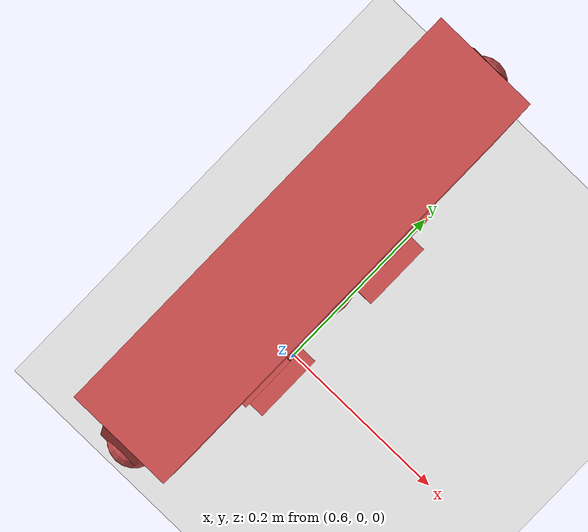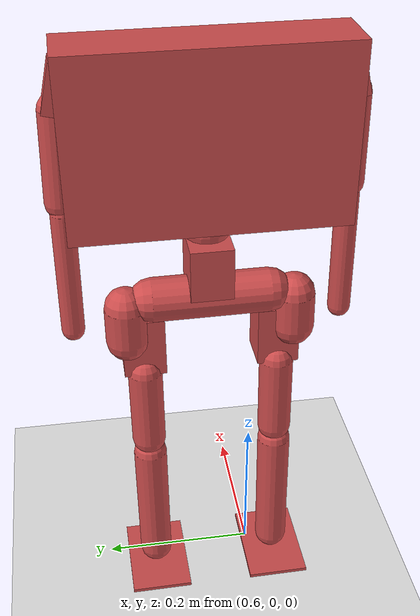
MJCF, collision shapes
<mujoco model="HumanoidReal">
  <compiler angle="radian" meshdir="humanoid_meshes_obj" autolimits="true" />
  <default>
    <joint damping="1.0" armature="0.05" />
    <default class="visual">
      <geom group="2" type="mesh" contype="0" conaffinity="0" density="0" />
    </default>
    <default class="collision">
      <geom group="3" condim="3" friction="0.8 0.1 0.01" solref="0.01 1" solimp="0.95 0.99 0.001" rgba="0.8 0.3 0.3 0.4" />
    </default>
  </default>
  <asset>
    <mesh name="0003_1" file="0003_1.obj" scale="0.001 0.001 0.001" />
    <mesh name="0003_10" file="0003_10.obj" scale="0.001 0.001 0.001" />
    <mesh name="0003_11" file="0003_11.obj" scale="0.001 0.001 0.001" />
    <mesh name="0003_2" file="0003_2.obj" scale="0.001 0.001 0.001" />
    <mesh name="0003_3" file="0003_3.obj" scale="0.001 0.001 0.001" />
    <mesh name="0003_4" file="0003_4.obj" scale="0.001 0.001 0.001" />
    <mesh name="0003_5" file="0003_5.obj" scale="0.001 0.001 0.001" />
    <mesh name="0003_6" file="0003_6.obj" scale="0.001 0.001 0.001" />
    <mesh name="0003_7" file="0003_7.obj" scale="0.001 0.001 0.001" />
    <mesh name="0003_8" file="0003_8.obj" scale="0.001 0.001 0.001" />
    <mesh name="0003_9" file="0003_9.obj" scale="0.001 0.001 0.001" />
    <mesh name="0004_1" file="0004_1.obj" scale="0.001 0.001 0.001" />
    <mesh name="0004_10" file="0004_10.obj" scale="0.001 0.001 0.001" />
    <mesh name="0004_11" file="0004_11.obj" scale="0.001 0.001 0.001" />
    <mesh name="0004_2" file="0004_2.obj" scale="0.001 0.001 0.001" />
    <mesh name="0004_3" file="0004_3.obj" scale="0.001 0.001 0.001" />
    <mesh name="0004_4" file="0004_4.obj" scale="0.001 0.001 0.001" />
    <mesh name="0004_5" file="0004_5.obj" scale="0.001 0.001 0.001" />
    <mesh name="0004_6" file="0004_6.obj" scale="0.001 0.001 0.001" />
    <mesh name="0004_7" file="0004_7.obj" scale="0.001 0.001 0.001" />
    <mesh name="0004_8" file="0004_8.obj" scale="0.001 0.001 0.001" />
    <mesh name="0004_9" file="0004_9.obj" scale="0.001 0.001 0.001" />
    <mesh name="Component22_1" file="Component22_1.obj" scale="0.001 0.001 0.001" />
    <mesh name="LeftZYprint_1" file="LeftZYprint_1.obj" scale="0.001 0.001 0.001" />
    <mesh name="SCS0009_1" file="SCS0009_1.obj" scale="0.001 0.001 0.001" />
    <mesh name="SCS0009_2" file="SCS0009_2.obj" scale="0.001 0.001 0.001" />
    <mesh name="SCS0009_3" file="SCS0009_3.obj" scale="0.001 0.001 0.001" />
    <mesh name="SCS0009_4" file="SCS0009_4.obj" scale="0.001 0.001 0.001" />
    <mesh name="SCS0009_5" file="SCS0009_5.obj" scale="0.001 0.001 0.001" />
    <mesh name="SCS0009_6" file="SCS0009_6.obj" scale="0.001 0.001 0.001" />
    <mesh name="Servo_SC15_1" file="Servo_SC15_1.obj" scale="0.001 0.001 0.001" />
    <mesh name="Servo_SC15_10" file="Servo_SC15_10.obj" scale="0.001 0.001 0.001" />
    <mesh name="Servo_SC15_11" file="Servo_SC15_11.obj" scale="0.001 0.001 0.001" />
    <mesh name="Servo_SC15_2" file="Servo_SC15_2.obj" scale="0.001 0.001 0.001" />
    <mesh name="Servo_SC15_3" file="Servo_SC15_3.obj" scale="0.001 0.001 0.001" />
    <mesh name="Servo_SC15_4" file="Servo_SC15_4.obj" scale="0.001 0.001 0.001" />
    <mesh name="Servo_SC15_5" file="Servo_SC15_5.obj" scale="0.001 0.001 0.001" />
    <mesh name="Servo_SC15_6" file="Servo_SC15_6.obj" scale="0.001 0.001 0.001" />
    <mesh name="Servo_SC15_7" file="Servo_SC15_7.obj" scale="0.001 0.001 0.001" />
    <mesh name="Servo_SC15_8" file="Servo_SC15_8.obj" scale="0.001 0.001 0.001" />
    <mesh name="Servo_SC15_9" file="Servo_SC15_9.obj" scale="0.001 0.001 0.001" />
    <mesh name="XYWaist_1" file="XYWaist_1.obj" scale="0.001 0.001 0.001" />
    <mesh name="YZWaist_1" file="YZWaist_1.obj" scale="0.001 0.001 0.001" />
    <mesh name="base_link" file="base_link.obj" scale="0.001 0.001 0.001" />
    <mesh name="elbowConnector_1" file="elbowConnector_1.obj" scale="0.001 0.001 0.001" />
    <mesh name="forearm_1" file="forearm_1.obj" scale="0.001 0.001 0.001" />
    <mesh name="forearm_2" file="forearm_2.obj" scale="0.001 0.001 0.001" />
    <mesh name="mount_1" file="mount_1.obj" scale="0.001 0.001 0.001" />
    <mesh name="mount_2" file="mount_2.obj" scale="0.001 0.001 0.001" />
    <mesh name="mount_3" file="mount_3.obj" scale="0.001 0.001 0.001" />
    <mesh name="mount_4" file="mount_4.obj" scale="0.001 0.001 0.001" />
    <mesh name="mount_5" file="mount_5.obj" scale="0.001 0.001 0.001" />
    <mesh name="mount_6" file="mount_6.obj" scale="0.001 0.001 0.001" />
    <mesh name="rightElbowConnector_1" file="rightElbowConnector_1.obj" scale="0.001 0.001 0.001" />
    <mesh name="rightShoulderConnector_1" file="rightShoulderConnector_1.obj" scale="0.001 0.001 0.001" />
    <mesh name="rightXZprint_1" file="rightXZprint_1.obj" scale="0.001 0.001 0.001" />
    <mesh name="rightXZprint_2" file="rightXZprint_2.obj" scale="0.001 0.001 0.001" />
    <mesh name="rightZYprint_1" file="rightZYprint_1.obj" scale="0.001 0.001 0.001" />
    <mesh name="rightfoot_1" file="rightfoot_1.obj" scale="0.001 0.001 0.001" />
    <mesh name="rightfoot_2" file="rightfoot_2.obj" scale="0.001 0.001 0.001" />
    <mesh name="rightshin_1" file="rightshin_1.obj" scale="0.001 0.001 0.001" />
    <mesh name="rightshin_2" file="rightshin_2.obj" scale="0.001 0.001 0.001" />
    <mesh name="shoulderConnector_1" file="shoulderConnector_1.obj" scale="0.001 0.001 0.001" />
    <mesh name="shoulderLeft_1" file="shoulderLeft_1.obj" scale="0.001 0.001 0.001" />
    <mesh name="shoulderRight_1" file="shoulderRight_1.obj" scale="0.001 0.001 0.001" />
    <mesh name="thigh_1" file="thigh_1.obj" scale="0.001 0.001 0.001" />
    <mesh name="thigh_2" file="thigh_2.obj" scale="0.001 0.001 0.001" />
    <mesh name="upperArm_1" file="upperArm_1.obj" scale="0.001 0.001 0.001" />
    <mesh name="upperArm_2" file="upperArm_2.obj" scale="0.001 0.001 0.001" />
  </asset>
  <worldbody>
    <light directional="true" diffuse=".8 .8 .8" pos="0 0 5" dir="0 0 -1" />
    <geom name="floor" type="plane" size="10 10 0.1" rgba=".9 .9 .9 1" condim="3" />
    <body name="base_link" pos="0 0 -0.0130">
      <inertial pos="0.560728 0.059613 0.470217" mass="0.154201" fullinertia="3.9931e-04 5.7774e-05 3.9962e-04 -1.4036e-06 -1.0629e-07 4.4607e-06" />
      <joint name="base_joint" type="free" />
      <body name="0003_9" pos="0.540429 -0.527466 0.983811">
        <inertial pos="0.019955 0.489201 -0.541609" mass="0.117744" fullinertia="8.7079e-05 8.7791e-05 3.7257e-05 3.6923e-08 1.2223e-07 -1.0681e-05" />
        <joint name="Revolute 18" pos="0.0457 0.4911815 -0.50814" axis="1 0 0" range="-1.5708 0.349066" actuatorfrcrange="-100 100" />
        <body name="0003_11" pos="-0.437997 1.05685 -0.548399">
          <inertial pos="0.473030 -0.550624 -0.031976" mass="0.217164" fullinertia="1.3138e-04 1.3935e-04 8.3822e-05 7.0443e-08 5.5091e-06 -7.2835e-06" />
          <joint name="Revolute 26" pos="0.46038 -0.55657 -0.04412" axis="0 -0.013033 -0.999915" range="-1.5708 0.959931" actuatorfrcrange="-100 100" />
          <body name="0003_4" pos="-0.091932 -0.549871 0.341287">
            <inertial pos="0.550018 -0.004388 -0.462059" mass="0.119071" fullinertia="2.1368e-04 1.9314e-04 3.5538e-05 2.3302e-09 1.3527e-07 -2.5582e-06" />
            <joint name="Revolute 23" pos="0.55055 -0.02929 -0.40110" axis="0 -0.999915 0.013033" range="-1.5708 0.349066" actuatorfrcrange="-100 100" />
            <body name="0003_2" pos="0.80407 -0.037649 -1.06229">
              <inertial pos="-0.253933 0.030426 0.401634" mass="0.075373" fullinertia="2.9313e-04 2.8409e-04 5.5356e-05 1.0961e-10 8.3585e-09 -2.9824e-06" />
              <joint name="Revolute 21" pos="-0.25655 0.05797 0.53529" axis="0 0.999915 -0.013033" range="-1.5708 1.5708" actuatorfrcrange="-100 100" />
              <geom class="visual" mesh="0003_2" pos="-0.81457 0.058137 0.28559" quat="1 0 0 0" />
              <geom class="visual" mesh="rightshin_2" pos="-0.81457 0.058137 0.28559" quat="1 0 0 0" />
              <geom class="visual" mesh="rightfoot_2" pos="-0.81457 0.058137 0.28559" quat="1 0 0 0" />
              <geom class="collision" type="box" pos="-0.25393 0.02937 0.32068" quat="0.49673 -0.50325 -0.50325 -0.49673" size="0.00250 0.06000 0.04000" />
              <geom class="collision" type="capsule" pos="-0.25394 0.03084 0.43367" quat="0.00652 0.99998 0.00000 -0.00000" size="0.02140 0.08910" />
            </body>
            <geom class="visual" mesh="0003_4" pos="-0.0105 0.020488 -0.776699" quat="1 0 0 0" />
            <geom class="visual" mesh="thigh_1" pos="-0.0105 0.020488 -0.776699" quat="1 0 0 0" />
            <geom class="visual" mesh="0004_2" pos="-0.0105 0.020488 -0.776699" quat="1 0 0 0" />
            <geom class="visual" mesh="Servo_SC15_10" pos="-0.0105 0.020488 -0.776699" quat="1 0 0 0" />
            <geom class="collision" type="capsule" pos="0.55000 -0.00430 -0.46306" quat="0.00000 -0.00000 0.00652 0.99998" size="0.02140 0.05318" />
          </body>
          <geom class="visual" mesh="0003_11" pos="-0.102432 -0.529383 -0.435412" quat="1 0 0 0" />
          <geom class="visual" mesh="LeftZYprint_1" pos="-0.102432 -0.529383 -0.435412" quat="1 0 0 0" />
          <geom class="visual" mesh="0004_10" pos="-0.102432 -0.529383 -0.435412" quat="1 0 0 0" />
          <geom class="visual" mesh="Servo_SC15_11" pos="-0.102432 -0.529383 -0.435412" quat="1 0 0 0" />
          <geom class="collision" type="box" pos="0.47388 -0.55291 -0.02889" quat="0.00462 0.70709 0.70709 -0.00462" size="0.02565 0.02583 0.03832" />
        </body>
        <geom class="visual" mesh="0003_9" pos="-0.540429 0.527466 -0.983811" quat="1 0 0 0" />
        <geom class="visual" mesh="rightXZprint_2" pos="-0.540429 0.527466 -0.983811" quat="1 0 0 0" />
        <geom class="visual" mesh="0004_6" pos="-0.540429 0.527466 -0.983811" quat="1 0 0 0" />
        <geom class="visual" mesh="Servo_SC15_6" pos="-0.540429 0.527466 -0.983811" quat="1 0 0 0" />
        <geom class="collision" type="capsule" pos="0.01990 0.48517 -0.54360" quat="0.00787 0.70706 0.70706 -0.00787" size="0.02578 0.02263" />
      </body>
      <body name="0003_1" pos="0.395242 0.737653 0.965035">
        <inertial pos="0.165737 -0.580924 -0.525375" mass="0.117744" fullinertia="8.7079e-05 8.8322e-05 3.6726e-05 3.3725e-08 -1.2315e-07 9.3490e-06" />
        <joint name="Revolute 24" pos="0.13999 -0.5950085 -0.48698" axis="-1 0 0" range="-1.5708 0.174533" actuatorfrcrange="-100 100" />
        <body name="0003_3" pos="0.610997 -1.12513 -0.692973">
          <inertial pos="-0.430406 0.526371 0.129303" mass="0.217164" fullinertia="1.3148e-04 1.3946e-04 8.3801e-05 4.2058e-07 5.4986e-06 6.3895e-06" />
          <joint name="Revolute 28" pos="-0.44769 0.53181 0.11700" axis="0 -0.013033 -0.999915" range="-0.959931 1.5708" actuatorfrcrange="-100 100" />
          <body name="0003_10" pos="-0.995739 0.366978 0.502481">
            <inertial pos="0.550418 0.161015 -0.462060" mass="0.119071" fullinertia="2.1368e-04 1.9314e-04 3.5538e-05 2.3272e-09 1.3524e-07 -2.5567e-06" />
            <joint name="Revolute 25" pos="0.55095 0.13619 -0.39521" axis="0 -0.999915 0.013033" range="-1.5708 0.349066" actuatorfrcrange="-100 100" />
            <body name="0003_5" pos="0.802314 0.293125 -1.06485">
              <inertial pos="-0.251777 -0.135917 0.404203" mass="0.075373" fullinertia="2.9316e-04 2.8405e-04 5.5423e-05 8.6855e-11 8.4652e-09 -4.7248e-06" />
              <joint name="Revolute 27" pos="-0.25335 -0.10745 0.53383" axis="0 0.999915 -0.013033" range="-1.5708 1.5708" actuatorfrcrange="-100 100" />
              <geom class="visual" mesh="0003_5" pos="-0.812814 -0.272623 0.290302" quat="1 0 0 0" />
              <geom class="visual" mesh="rightshin_1" pos="-0.812814 -0.272623 0.290302" quat="1 0 0 0" />
              <geom class="visual" mesh="rightfoot_1" pos="-0.812814 -0.272623 0.290302" quat="1 0 0 0" />
              <geom class="collision" type="box" pos="-0.25177 -0.13750 0.32326" quat="0.50325 0.49673 0.49673 -0.50325" size="0.00250 0.06000 0.04000" />
              <geom class="collision" type="capsule" pos="-0.25178 -0.13453 0.43623" quat="0.00000 0.00000 -0.00652 -0.99998" size="0.02140 0.08910" />
            </body>
            <geom class="visual" mesh="0003_10" pos="-0.0105 0.020502 -0.774543" quat="1 0 0 0" />
            <geom class="visual" mesh="thigh_2" pos="-0.0105 0.020502 -0.774543" quat="1 0 0 0" />
            <geom class="visual" mesh="0004_9" pos="-0.0105 0.020502 -0.774543" quat="1 0 0 0" />
            <geom class="visual" mesh="Servo_SC15_5" pos="-0.0105 0.020502 -0.774543" quat="1 0 0 0" />
            <geom class="collision" type="capsule" pos="0.55040 0.16111 -0.46306" quat="0.00000 -0.00000 0.00652 0.99998" size="0.02140 0.05317" />
          </body>
          <geom class="visual" mesh="0003_3" pos="-1.00624 0.38748 -0.272062" quat="1 0 0 0" />
          <geom class="visual" mesh="rightZYprint_1" pos="-1.00624 0.38748 -0.272062" quat="1 0 0 0" />
          <geom class="visual" mesh="0004_8" pos="-1.00624 0.38748 -0.272062" quat="1 0 0 0" />
          <geom class="visual" mesh="Servo_SC15_4" pos="-1.00624 0.38748 -0.272062" quat="1 0 0 0" />
          <geom class="collision" type="box" pos="-0.42953 0.52885 0.13231" quat="0.00020 -0.00000 -0.99998 0.00679" size="0.02584 0.02597 0.03833" />
        </body>
        <geom class="visual" mesh="0003_1" pos="-0.395242 -0.737653 -0.965035" quat="1 0 0 0" />
        <geom class="visual" mesh="rightXZprint_1" pos="-0.395242 -0.737653 -0.965035" quat="1 0 0 0" />
        <geom class="visual" mesh="0004_7" pos="-0.395242 -0.737653 -0.965035" quat="1 0 0 0" />
        <geom class="visual" mesh="Servo_SC15_9" pos="-0.395242 -0.737653 -0.965035" quat="1 0 0 0" />
        <geom class="collision" type="capsule" pos="0.16579 -0.57694 -0.52747" quat="0.00135 0.70711 0.70711 -0.00135" size="0.02578 0.02263" />
      </body>
      <body name="0003_6" pos="0.482752 -0.417042 1.07481">
        <inertial pos="0.085091 0.477962 -0.560107" mass="0.154732" fullinertia="6.2717e-05 8.7002e-05 6.2619e-05 -3.8531e-07 -1.0349e-05 -1.3163e-06" />
        <joint name="Revolute 22" pos="0.05248 0.47970 -0.58852" axis="-1 0 0" range="-0.610865 0.610865" actuatorfrcrange="-100 100" armature="0.0437" damping="0" />
        <geom class="visual" mesh="0003_6" pos="-0.482752 0.417042 -1.07481" quat="1 0 0 0" />
        <geom class="visual" mesh="XYWaist_1" pos="-0.482752 0.417042 -1.07481" quat="1 0 0 0" />
        <geom class="visual" mesh="0004_4" pos="-0.482752 0.417042 -1.07481" quat="1 0 0 0" />
        <geom class="visual" mesh="Servo_SC15_1" pos="-0.482752 0.417042 -1.07481" quat="1 0 0 0" />
        <geom class="collision" type="box" pos="0.08313 0.47849 -0.56513" quat="0.50202 0.49797 0.50202 0.49797" size="0.02555 0.03237 0.03265" />
      <body name="waist_flex_roll" pos="0 0 0"><inertial pos="0 0 0" mass="1e-5" diaginertia="1e-9 1e-9 1e-9" /><joint name="waist_flex_roll_j" pos="0.05248 0.47970 -0.58852" axis="-1 0 0" range="-0.5 0.5" stiffness="1.551" damping="0.0566" armature="0" actuatorfrcrange="-100 100" /><body name="0003_7" pos="-0.472252 0.395027 0.010165">
          <inertial pos="0.562558 0.083961 -0.514154" mass="0.117680" fullinertia="9.0400e-05 9.2508e-05 4.2372e-05 -6.3421e-08 -1.2598e-05 -3.9081e-07" />
          <joint name="Revolute 20" pos="0.55329 0.05789 -0.55354" axis="0 -0.999979 0.006517" range="-0.349066 1.5708" actuatorfrcrange="-100 100" />
          <body name="0003_8" pos="0 0.677737 -0.408133">
            <inertial pos="0.550157 -0.592797 0.015843" mass="0.108104" fullinertia="7.4307e-04 3.1611e-04 5.1507e-04 -2.1887e-08 -3.3569e-06 1.2968e-06" />
            <joint name="Revolute 19" pos="0.55089 -0.59622 -0.05599" axis="0 0.006517 0.999979" range="-1.5708 1.5708" actuatorfrcrange="-100 100" />
            <body name="mount_6" pos="0.54596 -0.420605 0.079674">
              <inertial pos="0.005405 -0.021997 -0.031355" mass="0.021775" fullinertia="5.5073e-06 4.7652e-06 3.1989e-06 7.3431e-08 1.4249e-08 -1.9881e-07" />
              <joint name="Revolute 2" pos="0.01375 -0.01317 -0.00776" axis="0 0.999979 -0.006517" range="-2.0944 2.0944" actuatorfrcrange="-100 100" />
              <body name="mount_5" pos="-0.01447 -0.002339 -0.035059">
                <inertial pos="0.021511 -0.010858 -0.078608" mass="0.024203" fullinertia="3.2921e-05 3.4139e-05 4.1396e-06 -1.0956e-07 2.3278e-06 1.1130e-06" />
                <joint name="Revolute 6" pos="0.00924 -0.02210 -0.01009" axis="-1 0 0" range="-1.5708 0.436332" actuatorfrcrange="-100 100" />
                <body name="mount_2" pos="0.015106 -0.01 -0.12041">
                  <inertial pos="0.005204 0.000366 -0.093340" mass="0.016861" fullinertia="4.1408e-05 4.0629e-05 2.1119e-06 -5.3027e-14 6.3937e-13 6.1315e-07" />
                  <joint name="Revolute 1" pos="0.01410 -0.01319 -0.01023" axis="0 -1 0" range="0 2.0944" actuatorfrcrange="-100 100" />
                  <geom class="visual" mesh="mount_2" pos="-0.557096 -0.222778 -0.601051" quat="1 0 0 0" />
                  <geom class="visual" mesh="forearm_1" pos="-0.557096 -0.222778 -0.601051" quat="1 0 0 0" />
                  <geom class="collision" type="capsule" pos="0.00520 0.00081 -0.08873" quat="0.00000 -0.00000 1.00000 0.00000" size="0.01375 0.07625" />
                </body>
                <geom class="visual" mesh="mount_5" pos="-0.54199 -0.232778 -0.721461" quat="1 0 0 0" />
                <geom class="visual" mesh="upperArm_2" pos="-0.54199 -0.232778 -0.721461" quat="1 0 0 0" />
                <geom class="visual" mesh="rightElbowConnector_1" pos="-0.54199 -0.232778 -0.721461" quat="1 0 0 0" />
                <geom class="visual" mesh="SCS0009_2" pos="-0.54199 -0.232778 -0.721461" quat="1 0 0 0" />
                <geom class="collision" type="capsule" pos="0.02349 -0.00960 -0.06896" quat="0.00774 -0.70706 -0.70706 -0.00774" size="0.01772 0.05258" />
              </body>
              <geom class="visual" mesh="mount_6" pos="-0.55646 -0.235117 -0.75652" quat="1 0 0 0" />
              <geom class="visual" mesh="rightShoulderConnector_1" pos="-0.55646 -0.235117 -0.75652" quat="1 0 0 0" />
              <geom class="visual" mesh="SCS0009_1" pos="-0.55646 -0.235117 -0.75652" quat="1 0 0 0" />
              <geom class="collision" type="box" pos="0.00571 -0.02411 -0.02833" quat="0.99420 0.10754 0.00000 0.00000" size="0.01498 0.01902 0.02729" />
            </body>
            <body name="mount_1" pos="0.54596 -0.737898 0.081742">
              <inertial pos="0.005405 -0.004657 -0.031468" mass="0.021775" fullinertia="5.5073e-06 4.7691e-06 3.1931e-06 -7.3235e-08 1.5208e-08 1.7832e-07" />
              <joint name="Revolute 4" pos="-0.00326 -0.01321 -0.01299" axis="0 -0.999979 0.006517" range="-2.0944 2.0944" actuatorfrcrange="-100 100" />
              <body name="mount_4" pos="-0.01447 0.001881 -0.035087">
                <inertial pos="0.021469 -0.015745 -0.078502" mass="0.024203" fullinertia="3.2921e-05 3.4173e-05 4.1092e-06 1.2204e-07 2.3024e-06 -1.1708e-06" />
                <joint name="Revolute 5" pos="0.00923 -0.00436 -0.01105" axis="-1 0 0" range="-0.436332 1.5708" actuatorfrcrange="-100 100" />
                <body name="mount_3" pos="0.015106 0.01003 -0.12055">
                  <inertial pos="0.005204 -0.027791 -0.093137" mass="0.016861" fullinertia="4.1373e-05 4.0629e-05 2.1363e-06 5.5258e-14 6.6275e-13 -1.1069e-06" />
                  <joint name="Revolute 3" pos="0.01398 -0.01721 -0.00904" axis="0 0.999915 -0.013033" range="-2.0944 0" actuatorfrcrange="-100 100" />
                  <geom class="visual" mesh="mount_3" pos="-0.557096 0.070265 -0.602951" quat="1 0 0 0" />
                  <geom class="visual" mesh="forearm_2" pos="-0.557096 0.070265 -0.602951" quat="1 0 0 0" />
                  <geom class="collision" type="capsule" pos="0.00520 -0.02819 -0.08854" quat="0.00000 -0.00000 -0.99998 0.00652" size="0.01376 0.07624" />
                </body>
                <geom class="visual" mesh="mount_4" pos="-0.54199 0.080295 -0.723501" quat="1 0 0 0" />
                <geom class="visual" mesh="upperArm_1" pos="-0.54199 0.080295 -0.723501" quat="1 0 0 0" />
                <geom class="visual" mesh="elbowConnector_1" pos="-0.54199 0.080295 -0.723501" quat="1 0 0 0" />
                <geom class="visual" mesh="SCS0009_3" pos="-0.54199 0.080295 -0.723501" quat="1 0 0 0" />
                <geom class="collision" type="capsule" pos="0.02349 -0.01739 -0.06909" quat="0.70729 -0.00426 0.00426 0.70689" size="0.01764 0.05277" />
              </body>
              <geom class="visual" mesh="mount_1" pos="-0.55646 0.082176 -0.758588" quat="1 0 0 0" />
              <geom class="visual" mesh="shoulderConnector_1" pos="-0.55646 0.082176 -0.758588" quat="1 0 0 0" />
              <geom class="visual" mesh="SCS0009_4" pos="-0.55646 0.082176 -0.758588" quat="1 0 0 0" />
              <geom class="collision" type="box" pos="0.00571 -0.00251 -0.02847" quat="0.11402 0.99348 0.00000 0.00000" size="0.01498 0.01902 0.02729" />
            </body>
            <geom class="visual" mesh="0003_8" pos="-0.0105 -0.655722 -0.676846" quat="1 0 0 0" />
            <geom class="visual" mesh="Component22_1" pos="-0.0105 -0.655722 -0.676846" quat="1 0 0 0" />
            <geom class="visual" mesh="shoulderLeft_1" pos="-0.0105 -0.655722 -0.676846" quat="1 0 0 0" />
            <geom class="visual" mesh="SCS0009_5" pos="-0.0105 -0.655722 -0.676846" quat="1 0 0 0" />
            <geom class="visual" mesh="shoulderRight_1" pos="-0.0105 -0.655722 -0.676846" quat="1 0 0 0" />
            <geom class="visual" mesh="SCS0009_6" pos="-0.0105 -0.655722 -0.676846" quat="1 0 0 0" />
            <geom class="collision" type="box" pos="0.55039 -0.59294 -0.00681" quat="0.00000 0.00000 -0.70941 -0.70480" size="0.03750 0.10280 0.15865" />
            <body name="pi" pos="0.5502 -0.5928 -0.0800">
              <inertial pos="0 0 0" mass="0.0771" diaginertia="3.084e-05 3.084e-05 3.084e-05" />
            </body>
            <body name="dcdc" pos="0.5502 -0.6428 0.0000">
              <inertial pos="0 0 0" mass="0.0318" diaginertia="1.272e-05 1.272e-05 1.272e-05" />
            </body>
            <body name="motor_ctrl" pos="0.5502 -0.5428 0.0000">
              <inertial pos="0 0 0" mass="0.0227" diaginertia="1.000e-05 1.000e-05 1.000e-05" />
            </body>
            <body name="terminal" pos="0.5202 -0.5928 -0.1000">
              <inertial pos="0 0 0" mass="0.0408" diaginertia="1.632e-05 1.632e-05 1.632e-05" />
            </body>
          </body>
          <geom class="visual" mesh="0003_7" pos="-0.0105 0.022015 -1.08498" quat="1 0 0 0" />
          <geom class="visual" mesh="YZWaist_1" pos="-0.0105 0.022015 -1.08498" quat="1 0 0 0" />
          <geom class="visual" mesh="0004_5" pos="-0.0105 0.022015 -1.08498" quat="1 0 0 0" />
          <geom class="visual" mesh="Servo_SC15_2" pos="-0.0105 0.022015 -1.08498" quat="1 0 0 0" />
          <geom class="collision" type="capsule" pos="0.56602 0.08395 -0.51365" quat="0.00000 -0.00000 -0.00326 -0.99999" size="0.02672 0.02259" />
        </body>
        </body></body>
      <geom class="visual" mesh="base_link" pos="0 0 0" quat="1 0 0 0" />
      <geom class="visual" mesh="0004_1" pos="0 0 0" quat="1 0 0 0" />
      <geom class="visual" mesh="Servo_SC15_7" pos="0 0 0" quat="1 0 0 0" />
      <geom class="visual" mesh="0004_3" pos="0 0 0" quat="1 0 0 0" />
      <geom class="visual" mesh="Servo_SC15_8" pos="0 0 0" quat="1 0 0 0" />
      <geom class="visual" mesh="0004_11" pos="0 0 0" quat="1 0 0 0" />
      <geom class="visual" mesh="Servo_SC15_3" pos="0 0 0" quat="1 0 0 0" />
      <geom class="collision" type="capsule" pos="0.56083 0.05960 0.46925" quat="0.00122 0.00120 0.71170 0.70248" size="0.02664 0.07058" />
      <body name="battery" pos="0.5607 0.0596 0.4102">
        <inertial pos="0 0 0" mass="0.0862" diaginertia="3.448e-05 3.448e-05 3.448e-05" />
      </body>
      <body name="breadboard" pos="0.5307 0.0596 0.4702">
        <inertial pos="0 0 0" mass="0.0680" diaginertia="2.720e-05 2.720e-05 2.720e-05" />
      </body>
    </body>
  </worldbody>
  <option timestep="0.005" integrator="implicitfast" />
  <contact>
    <exclude body1="base_link" body2="0003_9" />
    <exclude body1="0003_9" body2="0003_11" />
    <exclude body1="0003_11" body2="0003_4" />
    <exclude body1="0003_4" body2="0003_2" />
    <exclude body1="base_link" body2="0003_1" />
    <exclude body1="0003_1" body2="0003_3" />
    <exclude body1="0003_3" body2="0003_10" />
    <exclude body1="0003_10" body2="0003_5" />
    <exclude body1="base_link" body2="0003_6" />
    <exclude body1="0003_6" body2="0003_7" />
    <exclude body1="0003_7" body2="0003_8" />
    <exclude body1="0003_8" body2="mount_6" />
    <exclude body1="mount_6" body2="mount_5" />
    <exclude body1="mount_5" body2="mount_2" />
    <exclude body1="0003_8" body2="mount_1" />
    <exclude body1="mount_1" body2="mount_4" />
    <exclude body1="mount_4" body2="mount_3" />
    <exclude body1="base_link" body2="0003_3" />
    <exclude body1="mount_5" body2="0003_8" />
    <exclude body1="mount_2" body2="0003_8" />
    <exclude body1="mount_4" body2="0003_8" />
    <exclude body1="mount_3" body2="0003_8" />
  </contact>
  <actuator>
    <position name="Revolute 18" joint="Revolute 18" kp="12.0" kv="2.0" ctrlrange="-1.5708 0.3491" forcerange="-1.47 1.47" />
    <position name="Revolute 26" joint="Revolute 26" kp="12.0" kv="2.0" ctrlrange="-1.5708 0.9599" forcerange="-1.47 1.47" />
    <position name="Revolute 23" joint="Revolute 23" kp="12.0" kv="2.0" ctrlrange="-1.5708 0.3491" forcerange="-1.47 1.47" />
    <position name="Revolute 21" joint="Revolute 21" kp="12.0" kv="2.0" ctrlrange="-1.5708 1.5708" forcerange="-1.47 1.47" />
    <position name="Revolute 24" joint="Revolute 24" kp="12.0" kv="2.0" ctrlrange="-1.5708 0.1745" forcerange="-1.47 1.47" />
    <position name="Revolute 28" joint="Revolute 28" kp="12.0" kv="2.0" ctrlrange="-0.9599 1.5708" forcerange="-1.47 1.47" />
    <position name="Revolute 25" joint="Revolute 25" kp="12.0" kv="2.0" ctrlrange="-1.5708 0.3491" forcerange="-1.47 1.47" />
    <position name="Revolute 27" joint="Revolute 27" kp="12.0" kv="2.0" ctrlrange="-1.5708 1.5708" forcerange="-1.47 1.47" />
    <position name="Revolute 22" joint="Revolute 22" kp="8.81" kv="0.642" ctrlrange="-0.6109 0.6109" forcerange="-1.47 1.47" />
    <position name="Revolute 20" joint="Revolute 20" kp="12.0" kv="2.0" ctrlrange="-0.3491 1.5708" forcerange="-1.47 1.47" />
    <position name="Revolute 19" joint="Revolute 19" kp="12.0" kv="2.0" ctrlrange="-1.5708 1.5708" forcerange="-1.47 1.47" />
    <position name="Revolute 2" joint="Revolute 2" kp="5.0" kv="0.5" ctrlrange="-2.0944 2.0944" forcerange="-0.226 0.226" />
    <position name="Revolute 6" joint="Revolute 6" kp="5.0" kv="0.5" ctrlrange="-1.5708 0.4363" forcerange="-0.226 0.226" />
    <position name="Revolute 1" joint="Revolute 1" kp="5.0" kv="0.5" ctrlrange="0.0000 2.0944" forcerange="-0.226 0.226" />
    <position name="Revolute 4" joint="Revolute 4" kp="5.0" kv="0.5" ctrlrange="-2.0944 2.0944" forcerange="-0.226 0.226" />
    <position name="Revolute 5" joint="Revolute 5" kp="5.0" kv="0.5" ctrlrange="-0.4363 1.5708" forcerange="-0.226 0.226" />
    <position name="Revolute 3" joint="Revolute 3" kp="5.0" kv="0.5" ctrlrange="-2.0944 0.0000" forcerange="-0.226 0.226" />
  </actuator>
  <keyframe>
    <key name="home" qpos="-0.5081541159865803 -0.13224099317118346 -0.028839669878346942 1 0 0 0 -0.06023 0.95993 -0.32092 0.0292 -0.0185 1.13261 -0.09577 0.27894 -0.09589 -0.08487 -0.20783 -0.03803 -0.00268 0.00409 0.03624 -0.00246 -0.00409" />
  </keyframe>
</mujoco>
